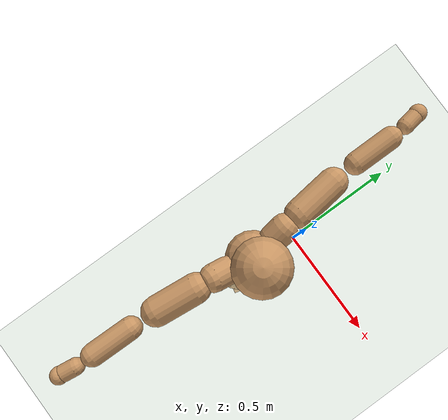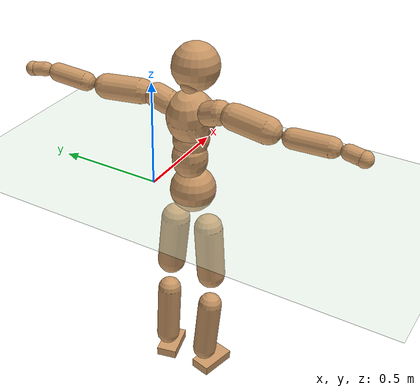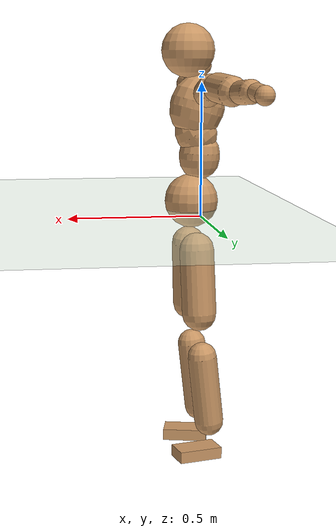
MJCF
<mujoco model="humanoid">
  <compiler coordinate="local" angle="radian"/>
  <default>
    <joint damping="0.0" armature="0.01" stiffness="0.0" limited="true"/>
    <geom conaffinity="1" condim="3" contype="7" margin="0.001" rgba="0.8 0.6 .4 1"/>
  </default>
  <asset>
    <texture type="skybox" builtin="gradient" rgb1=".4 .5 .6" rgb2="0 0 0" width="100" height="100"/>
    <texture builtin="flat" height="1278" mark="cross" markrgb="1 1 1" name="texgeom" random="0.01" rgb1="0.8 0.6 0.4" rgb2="0.8 0.6 0.4" type="cube" width="127"/>
    <texture builtin="checker" height="100" name="texplane" rgb1="0 0 0" rgb2="0.8 0.8 0.8" type="2d" width="100"/>
    <material name="MatPlane" reflectance="0.5" shininess="1" specular="1" texrepeat="60 60" texture="texplane"/>
    <material name="geom" texture="texgeom" texuniform="true"/>
  </asset>
  <worldbody>
    <light cutoff="100" diffuse="1 1 1" dir="-0 0 -1.3" directional="true" exponent="1" pos="0 0 1.3" specular=".1 .1 .1"/>
    <geom conaffinity="1" condim="3" name="floor" pos="0 0 0" rgba="0.8 0.9 0.8 1" size="100 100 .2" type="plane" material="MatPlane"/>
    <body name="Pelvis" pos="0.0001 -0.2117 0.0333">
      <freejoint name="Pelvis"/>
      <geom type="sphere" contype="1" conaffinity="1" density="500" size="0.1058" pos="0.0000 0.0000 0.0000" name="Pelvis"/>
      <body name="L_Hip" pos="-0.0053 0.0798 -0.0988">
        <joint name="L_Hip_x" type="hinge" pos="0 0 0" axis="1 0 0" stiffness="800" damping="80" armature="0.02" range="-180.0000 180.0000"/>
        <joint name="L_Hip_y" type="hinge" pos="0 0 0" axis="0 1 0" stiffness="800" damping="80" armature="0.02" range="-180.0000 180.0000"/>
        <joint name="L_Hip_z" type="hinge" pos="0 0 0" axis="0 0 1" stiffness="800" damping="80" armature="0.02" range="-180.0000 180.0000"/>
        <geom type="capsule" contype="1" conaffinity="1" density="500" fromto="-0.0027 0.0070 -0.0845 -0.0108 0.0282 -0.3378" size="0.0675" name="L_Hip"/>
        <body name="L_Knee" pos="-0.0134 0.0352 -0.4223">
          <joint name="L_Knee_x" type="hinge" pos="0 0 0" axis="1 0 0" stiffness="800" damping="80" armature="0.02" range="-180.0000 180.0000"/>
          <joint name="L_Knee_y" type="hinge" pos="0 0 0" axis="0 1 0" stiffness="800" damping="80" armature="0.02" range="-180.0000 180.0000"/>
          <joint name="L_Knee_z" type="hinge" pos="0 0 0" axis="0 0 1" stiffness="800" damping="80" armature="0.02" range="-180.0000 180.0000"/>
          <geom type="capsule" contype="1" conaffinity="1" density="500" fromto="-0.0102 -0.0023 -0.0901 -0.0409 -0.0092 -0.3605" size="0.0574" name="L_Knee"/>
          <body name="L_Ankle" pos="-0.0511 -0.0115 -0.4506">
            <joint name="L_Ankle_x" type="hinge" pos="0 0 0" axis="1 0 0" stiffness="800" damping="80" armature="0.02" range="-180.0000 180.0000"/>
            <joint name="L_Ankle_y" type="hinge" pos="0 0 0" axis="0 1 0" stiffness="800" damping="80" armature="0.02" range="-180.0000 180.0000"/>
            <joint name="L_Ankle_z" type="hinge" pos="0 0 0" axis="0 0 1" stiffness="800" damping="80" armature="0.02" range="-180.0000 180.0000"/>
            <geom type="box" contype="1" conaffinity="1" density="500" pos="0.0615 0.0143 -0.0317" size="0.0872 0.0499 0.0228" quat="0.9935 0.0000 0.0000 0.1139" name="L_Ankle"/>
            <body name="L_Toe" pos="0.1231 0.0286 -0.0635">
              <joint name="L_Toe_x" type="hinge" pos="0 0 0" axis="1 0 0" stiffness="500" damping="50" armature="0.02" range="-180.0000 180.0000"/>
              <joint name="L_Toe_y" type="hinge" pos="0 0 0" axis="0 1 0" stiffness="500" damping="50" armature="0.02" range="-180.0000 180.0000"/>
              <joint name="L_Toe_z" type="hinge" pos="0 0 0" axis="0 0 1" stiffness="500" damping="50" armature="0.02" range="-180.0000 180.0000"/>
              <geom type="box" contype="1" conaffinity="1" density="500" pos="0.0000 0.0000 0.0314" size="0.001 0.0025 0.0011" quat="0.9928 0.0000 0.0000 0.1197" name="L_Toe"/>
            </body>
          </body>
        </body>
      </body>
      <body name="R_Hip" pos="-0.0011 -0.0771 -0.0989">
        <joint name="R_Hip_x" type="hinge" pos="0 0 0" axis="1 0 0" stiffness="800" damping="80" armature="0.02" range="-180.0000 180.0000"/>
        <joint name="R_Hip_y" type="hinge" pos="0 0 0" axis="0 1 0" stiffness="800" damping="80" armature="0.02" range="-180.0000 180.0000"/>
        <joint name="R_Hip_z" type="hinge" pos="0 0 0" axis="0 0 1" stiffness="800" damping="80" armature="0.02" range="-180.0000 180.0000"/>
        <geom type="capsule" contype="1" conaffinity="1" density="500" fromto="-0.0031 -0.0087 -0.0856 -0.0126 -0.0346 -0.3422" size="0.0666" name="R_Hip"/>
        <body name="R_Knee" pos="-0.0157 -0.0433 -0.4278">
          <joint name="R_Knee_x" type="hinge" pos="0 0 0" axis="1 0 0" stiffness="800" damping="80" armature="0.02" range="-180.0000 180.0000"/>
          <joint name="R_Knee_y" type="hinge" pos="0 0 0" axis="0 1 0" stiffness="800" damping="80" armature="0.02" range="-180.0000 180.0000"/>
          <joint name="R_Knee_z" type="hinge" pos="0 0 0" axis="0 0 1" stiffness="800" damping="80" armature="0.02" range="-180.0000 180.0000"/>
          <geom type="capsule" contype="1" conaffinity="1" density="500" fromto="-0.0098 0.0030 -0.0904 -0.0393 0.0121 -0.3614" size="0.0575" name="R_Knee"/>
          <body name="R_Ankle" pos="-0.0492 0.0151 -0.4518">
            <joint name="R_Ankle_x" type="hinge" pos="0 0 0" axis="1 0 0" stiffness="800" damping="80" armature="0.02" range="-180.0000 180.0000"/>
            <joint name="R_Ankle_y" type="hinge" pos="0 0 0" axis="0 1 0" stiffness="800" damping="80" armature="0.02" range="-180.0000 180.0000"/>
            <joint name="R_Ankle_z" type="hinge" pos="0 0 0" axis="0 0 1" stiffness="800" damping="80" armature="0.02" range="-180.0000 180.0000"/>
            <geom type="box" contype="1" conaffinity="1" density="500" pos="0.0637 -0.0151 -0.0271" size="0.0892 0.0496 0.0227" quat="0.9933 0.0000 0.0000 -0.1159" name="R_Ankle"/>
            <body name="R_Toe" pos="0.1274 -0.0302 -0.0541">
              <joint name="R_Toe_x" type="hinge" pos="0 0 0" axis="1 0 0" stiffness="500" damping="50" armature="0.02" range="-180.0000 180.0000"/>
              <joint name="R_Toe_y" type="hinge" pos="0 0 0" axis="0 1 0" stiffness="500" damping="50" armature="0.02" range="-180.0000 180.0000"/>
              <joint name="R_Toe_z" type="hinge" pos="0 0 0" axis="0 0 1" stiffness="500" damping="50" armature="0.02" range="-180.0000 180.0000"/>
              <geom type="box" contype="1" conaffinity="1" density="500" pos="0.0000 0.0000 0.0295" size="0.0009 0.0024 0.0013" quat="0.9943 0.0000 0.0000 -0.1069" name="R_Toe"/>
            </body>
          </body>
        </body>
      </body>
      <body name="Torso" pos="-0.0297 -0.0028 0.1135">
        <joint name="Torso_x" type="hinge" pos="0 0 0" axis="1 0 0" stiffness="1000" damping="100" armature="0.02" range="-180.0000 180.0000"/>
        <joint name="Torso_y" type="hinge" pos="0 0 0" axis="0 1 0" stiffness="1000" damping="100" armature="0.02" range="-180.0000 180.0000"/>
        <joint name="Torso_z" type="hinge" pos="0 0 0" axis="0 0 1" stiffness="1000" damping="100" armature="0.02" range="-180.0000 180.0000"/>
        <geom type="capsule" contype="1" conaffinity="1" density="500" fromto="-0.0023 0.0021 0.0756 -0.0015 0.0014 0.0504" size="0.0798" name="Torso"/>
        <body name="Spine" pos="-0.0038 0.0035 0.1261">
          <joint name="Spine_x" type="hinge" pos="0 0 0" axis="1 0 0" stiffness="1000" damping="100" armature="0.02" range="-180.0000 180.0000"/>
          <joint name="Spine_y" type="hinge" pos="0 0 0" axis="0 1 0" stiffness="1000" damping="100" armature="0.02" range="-180.0000 180.0000"/>
          <joint name="Spine_z" type="hinge" pos="0 0 0" axis="0 0 1" stiffness="1000" damping="100" armature="0.02" range="-180.0000 180.0000"/>
          <geom type="capsule" contype="1" conaffinity="1" density="500" fromto="0.0204 0.0009 0.0313 0.0136 0.0006 0.0209" size="0.0807" name="Spine"/>
          <body name="Chest" pos="0.0341 0.0014 0.0522">
            <joint name="Chest_x" type="hinge" pos="0 0 0" axis="1 0 0" stiffness="1000" damping="100" armature="0.02" range="-180.0000 180.0000"/>
            <joint name="Chest_y" type="hinge" pos="0 0 0" axis="0 1 0" stiffness="1000" damping="100" armature="0.02" range="-180.0000 180.0000"/>
            <joint name="Chest_z" type="hinge" pos="0 0 0" axis="0 0 1" stiffness="1000" damping="100" armature="0.02" range="-180.0000 180.0000"/>
            <geom type="capsule" contype="1" conaffinity="1" density="500" fromto="-0.0260 -0.0007 0.0941 -0.0173 -0.0005 0.0627" size="0.1068" name="Chest"/>
            <body name="Neck" pos="-0.0444 -0.0022 0.223">
              <joint name="Neck_x" type="hinge" pos="0 0 0" axis="1 0 0" stiffness="500" damping="50" armature="0.02" range="-180.0000 180.0000"/>
              <joint name="Neck_y" type="hinge" pos="0 0 0" axis="0 1 0" stiffness="500" damping="50" armature="0.02" range="-180.0000 180.0000"/>
              <joint name="Neck_z" type="hinge" pos="0 0 0" axis="0 0 1" stiffness="500" damping="50" armature="0.02" range="-180.0000 180.0000"/>
              <geom type="capsule" contype="1" conaffinity="1" density="500" fromto="0.0121 0.0005 0.0141 0.0483 0.0019 0.0564" size="0.0444" name="Neck"/>
              <body name="Head" pos="0.0604 0.0024 0.0705">
                <joint name="Head_x" type="hinge" pos="0 0 0" axis="1 0 0" stiffness="500" damping="50" armature="0.02" range="-180.0000 180.0000"/>
                <joint name="Head_y" type="hinge" pos="0 0 0" axis="0 1 0" stiffness="500" damping="50" armature="0.02" range="-180.0000 180.0000"/>
                <joint name="Head_z" type="hinge" pos="0 0 0" axis="0 0 1" stiffness="500" damping="50" armature="0.02" range="-180.0000 180.0000"/>
                <geom type="sphere" contype="1" conaffinity="1" density="500" size="0.1047" pos="0.0000 0.0000 0.0000" name="Head"/>
              </body>
            </body>
            <body name="L_Thorax" pos="-0.04 0.0824 0.1245">
              <joint name="L_Thorax_x" type="hinge" pos="0 0 0" axis="1 0 0" stiffness="500" damping="50" armature="0.02" range="-180.0000 180.0000"/>
              <joint name="L_Thorax_y" type="hinge" pos="0 0 0" axis="0 1 0" stiffness="500" damping="50" armature="0.02" range="-180.0000 180.0000"/>
              <joint name="L_Thorax_z" type="hinge" pos="0 0 0" axis="0 0 1" stiffness="500" damping="50" armature="0.02" range="-180.0000 180.0000"/>
              <geom type="capsule" contype="1" conaffinity="1" density="500" fromto="-0.0023 0.0171 0.0070 -0.0094 0.0684 0.0280" size="0.0545" name="L_Thorax"/>
              <body name="L_Shoulder" pos="-0.0117 0.0855 0.035">
                <joint name="L_Shoulder_x" type="hinge" pos="0 0 0" axis="1 0 0" stiffness="500" damping="50" armature="0.02" range="-720.0000 720.0000"/>
                <joint name="L_Shoulder_y" type="hinge" pos="0 0 0" axis="0 1 0" stiffness="500" damping="50" armature="0.02" range="-720.0000 720.0000"/>
                <joint name="L_Shoulder_z" type="hinge" pos="0 0 0" axis="0 0 1" stiffness="500" damping="50" armature="0.02" range="-720.0000 720.0000"/>
                <geom type="capsule" contype="1" conaffinity="1" density="500" fromto="-0.0067 0.0552 -0.0031 -0.0269 0.2208 -0.0124" size="0.0555" name="L_Shoulder"/>
                <body name="L_Elbow" pos="-0.0336 0.276 -0.0155">
                  <joint name="L_Elbow_x" type="hinge" pos="0 0 0" axis="1 0 0" stiffness="500" damping="50" armature="0.02" range="-720.0000 720.0000"/>
                  <joint name="L_Elbow_y" type="hinge" pos="0 0 0" axis="0 1 0" stiffness="500" damping="50" armature="0.02" range="-720.0000 720.0000"/>
                  <joint name="L_Elbow_z" type="hinge" pos="0 0 0" axis="0 0 1" stiffness="500" damping="50" armature="0.02" range="-720.0000 720.0000"/>
                  <geom type="capsule" contype="1" conaffinity="1" density="500" fromto="-0.0000 0.0515 0.0026 -0.0000 0.2062 0.0105" size="0.0421" name="L_Elbow"/>
                  <body name="L_Wrist" pos="-0.0001 0.2577 0.0131">
                    <joint name="L_Wrist_x" type="hinge" pos="0 0 0" axis="1 0 0" stiffness="300" damping="30" armature="0.02" range="-180.0000 180.0000"/>
                    <joint name="L_Wrist_y" type="hinge" pos="0 0 0" axis="0 1 0" stiffness="300" damping="30" armature="0.02" range="-180.0000 180.0000"/>
                    <joint name="L_Wrist_z" type="hinge" pos="0 0 0" axis="0 0 1" stiffness="300" damping="30" armature="0.02" range="-180.0000 180.0000"/>
                    <geom type="capsule" contype="1" conaffinity="1" density="500" fromto="-0.0028 0.0166 -0.0020 -0.0111 0.0664 -0.0081" size="0.0315" name="L_Wrist"/>
                    <body name="L_Hand" pos="-0.0139 0.0831 -0.0101">
                      <joint name="L_Hand_x" type="hinge" pos="0 0 0" axis="1 0 0" stiffness="300" damping="30" armature="0.02" range="-180.0000 180.0000"/>
                      <joint name="L_Hand_y" type="hinge" pos="0 0 0" axis="0 1 0" stiffness="300" damping="30" armature="0.02" range="-180.0000 180.0000"/>
                      <joint name="L_Hand_z" type="hinge" pos="0 0 0" axis="0 0 1" stiffness="300" damping="30" armature="0.02" range="-180.0000 180.0000"/>
                      <geom type="sphere" contype="1" conaffinity="1" density="500" size="0.0335" pos="0.0000 0.0000 0.0000" name="L_Hand"/>
                    </body>
                  </body>
                </body>
              </body>
            </body>
            <body name="R_Thorax" pos="-0.0455 -0.0839 0.1229">
              <joint name="R_Thorax_x" type="hinge" pos="0 0 0" axis="1 0 0" stiffness="500" damping="50" armature="0.02" range="-180.0000 180.0000"/>
              <joint name="R_Thorax_y" type="hinge" pos="0 0 0" axis="0 1 0" stiffness="500" damping="50" armature="0.02" range="-180.0000 180.0000"/>
              <joint name="R_Thorax_z" type="hinge" pos="0 0 0" axis="0 0 1" stiffness="500" damping="50" armature="0.02" range="-180.0000 180.0000"/>
              <geom type="capsule" contype="1" conaffinity="1" density="500" fromto="-0.0023 -0.0178 0.0072 -0.0090 -0.0710 0.0290" size="0.0535" name="R_Thorax"/>
              <body name="R_Shoulder" pos="-0.0113 -0.0888 0.0362">
                <joint name="R_Shoulder_x" type="hinge" pos="0 0 0" axis="1 0 0" stiffness="500" damping="50" armature="0.02" range="-720.0000 720.0000"/>
                <joint name="R_Shoulder_y" type="hinge" pos="0 0 0" axis="0 1 0" stiffness="500" damping="50" armature="0.02" range="-720.0000 720.0000"/>
                <joint name="R_Shoulder_z" type="hinge" pos="0 0 0" axis="0 0 1" stiffness="500" damping="50" armature="0.02" range="-720.0000 720.0000"/>
                <geom type="capsule" contype="1" conaffinity="1" density="500" fromto="-0.0056 -0.0535 -0.0034 -0.0224 -0.2141 -0.0135" size="0.0572" name="R_Shoulder"/>
                <body name="R_Elbow" pos="-0.028 -0.2676 -0.0168">
                  <joint name="R_Elbow_x" type="hinge" pos="0 0 0" axis="1 0 0" stiffness="500" damping="50" armature="0.02" range="-720.0000 720.0000"/>
                  <joint name="R_Elbow_y" type="hinge" pos="0 0 0" axis="0 1 0" stiffness="500" damping="50" armature="0.02" range="-720.0000 720.0000"/>
                  <joint name="R_Elbow_z" type="hinge" pos="0 0 0" axis="0 0 1" stiffness="500" damping="50" armature="0.02" range="-720.0000 720.0000"/>
                  <geom type="capsule" contype="1" conaffinity="1" density="500" fromto="-0.0005 -0.0534 0.0027 -0.0021 -0.2138 0.0108" size="0.0429" name="R_Elbow"/>
                  <body name="R_Wrist" pos="-0.0027 -0.2672 0.0135">
                    <joint name="R_Wrist_x" type="hinge" pos="0 0 0" axis="1 0 0" stiffness="300" damping="30" armature="0.02" range="-180.0000 180.0000"/>
                    <joint name="R_Wrist_y" type="hinge" pos="0 0 0" axis="0 1 0" stiffness="300" damping="30" armature="0.02" range="-180.0000 180.0000"/>
                    <joint name="R_Wrist_z" type="hinge" pos="0 0 0" axis="0 0 1" stiffness="300" damping="30" armature="0.02" range="-180.0000 180.0000"/>
                    <geom type="capsule" contype="1" conaffinity="1" density="500" fromto="-0.0022 -0.0168 -0.0015 -0.0088 -0.0670 -0.0060" size="0.0324" name="R_Wrist"/>
                    <body name="R_Hand" pos="-0.011 -0.0838 -0.0076">
                      <joint name="R_Hand_x" type="hinge" pos="0 0 0" axis="1 0 0" stiffness="300" damping="30" armature="0.02" range="-180.0000 180.0000"/>
                      <joint name="R_Hand_y" type="hinge" pos="0 0 0" axis="0 1 0" stiffness="300" damping="30" armature="0.02" range="-180.0000 180.0000"/>
                      <joint name="R_Hand_z" type="hinge" pos="0 0 0" axis="0 0 1" stiffness="300" damping="30" armature="0.02" range="-180.0000 180.0000"/>
                      <geom type="sphere" contype="1" conaffinity="1" density="500" size="0.0338" pos="0.0000 0.0000 0.0000" name="R_Hand"/>
                    </body>
                  </body>
                </body>
              </body>
            </body>
          </body>
        </body>
      </body>
    </body>
  </worldbody>
  <actuator>
    <motor name="L_Hip_x" joint="L_Hip_x" gear="500"/>
    <motor name="L_Hip_y" joint="L_Hip_y" gear="500"/>
    <motor name="L_Hip_z" joint="L_Hip_z" gear="500"/>
    <motor name="L_Knee_x" joint="L_Knee_x" gear="500"/>
    <motor name="L_Knee_y" joint="L_Knee_y" gear="500"/>
    <motor name="L_Knee_z" joint="L_Knee_z" gear="500"/>
    <motor name="L_Ankle_x" joint="L_Ankle_x" gear="500"/>
    <motor name="L_Ankle_y" joint="L_Ankle_y" gear="500"/>
    <motor name="L_Ankle_z" joint="L_Ankle_z" gear="500"/>
    <motor name="L_Toe_x" joint="L_Toe_x" gear="500"/>
    <motor name="L_Toe_y" joint="L_Toe_y" gear="500"/>
    <motor name="L_Toe_z" joint="L_Toe_z" gear="500"/>
    <motor name="R_Hip_x" joint="R_Hip_x" gear="500"/>
    <motor name="R_Hip_y" joint="R_Hip_y" gear="500"/>
    <motor name="R_Hip_z" joint="R_Hip_z" gear="500"/>
    <motor name="R_Knee_x" joint="R_Knee_x" gear="500"/>
    <motor name="R_Knee_y" joint="R_Knee_y" gear="500"/>
    <motor name="R_Knee_z" joint="R_Knee_z" gear="500"/>
    <motor name="R_Ankle_x" joint="R_Ankle_x" gear="500"/>
    <motor name="R_Ankle_y" joint="R_Ankle_y" gear="500"/>
    <motor name="R_Ankle_z" joint="R_Ankle_z" gear="500"/>
    <motor name="R_Toe_x" joint="R_Toe_x" gear="500"/>
    <motor name="R_Toe_y" joint="R_Toe_y" gear="500"/>
    <motor name="R_Toe_z" joint="R_Toe_z" gear="500"/>
    <motor name="Torso_x" joint="Torso_x" gear="500"/>
    <motor name="Torso_y" joint="Torso_y" gear="500"/>
    <motor name="Torso_z" joint="Torso_z" gear="500"/>
    <motor name="Spine_x" joint="Spine_x" gear="500"/>
    <motor name="Spine_y" joint="Spine_y" gear="500"/>
    <motor name="Spine_z" joint="Spine_z" gear="500"/>
    <motor name="Chest_x" joint="Chest_x" gear="500"/>
    <motor name="Chest_y" joint="Chest_y" gear="500"/>
    <motor name="Chest_z" joint="Chest_z" gear="500"/>
    <motor name="Neck_x" joint="Neck_x" gear="500"/>
    <motor name="Neck_y" joint="Neck_y" gear="500"/>
    <motor name="Neck_z" joint="Neck_z" gear="500"/>
    <motor name="Head_x" joint="Head_x" gear="500"/>
    <motor name="Head_y" joint="Head_y" gear="500"/>
    <motor name="Head_z" joint="Head_z" gear="500"/>
    <motor name="L_Thorax_x" joint="L_Thorax_x" gear="500"/>
    <motor name="L_Thorax_y" joint="L_Thorax_y" gear="500"/>
    <motor name="L_Thorax_z" joint="L_Thorax_z" gear="500"/>
    <motor name="L_Shoulder_x" joint="L_Shoulder_x" gear="500"/>
    <motor name="L_Shoulder_y" joint="L_Shoulder_y" gear="500"/>
    <motor name="L_Shoulder_z" joint="L_Shoulder_z" gear="500"/>
    <motor name="L_Elbow_x" joint="L_Elbow_x" gear="500"/>
    <motor name="L_Elbow_y" joint="L_Elbow_y" gear="500"/>
    <motor name="L_Elbow_z" joint="L_Elbow_z" gear="500"/>
    <motor name="L_Wrist_x" joint="L_Wrist_x" gear="500"/>
    <motor name="L_Wrist_y" joint="L_Wrist_y" gear="500"/>
    <motor name="L_Wrist_z" joint="L_Wrist_z" gear="500"/>
    <motor name="L_Hand_x" joint="L_Hand_x" gear="500"/>
    <motor name="L_Hand_y" joint="L_Hand_y" gear="500"/>
    <motor name="L_Hand_z" joint="L_Hand_z" gear="500"/>
    <motor name="R_Thorax_x" joint="R_Thorax_x" gear="500"/>
    <motor name="R_Thorax_y" joint="R_Thorax_y" gear="500"/>
    <motor name="R_Thorax_z" joint="R_Thorax_z" gear="500"/>
    <motor name="R_Shoulder_x" joint="R_Shoulder_x" gear="500"/>
    <motor name="R_Shoulder_y" joint="R_Shoulder_y" gear="500"/>
    <motor name="R_Shoulder_z" joint="R_Shoulder_z" gear="500"/>
    <motor name="R_Elbow_x" joint="R_Elbow_x" gear="500"/>
    <motor name="R_Elbow_y" joint="R_Elbow_y" gear="500"/>
    <motor name="R_Elbow_z" joint="R_Elbow_z" gear="500"/>
    <motor name="R_Wrist_x" joint="R_Wrist_x" gear="500"/>
    <motor name="R_Wrist_y" joint="R_Wrist_y" gear="500"/>
    <motor name="R_Wrist_z" joint="R_Wrist_z" gear="500"/>
    <motor name="R_Hand_x" joint="R_Hand_x" gear="500"/>
    <motor name="R_Hand_y" joint="R_Hand_y" gear="500"/>
    <motor name="R_Hand_z" joint="R_Hand_z" gear="500"/>
  </actuator>
  <contact>
    <exclude body1="Torso" body2="Chest"/>
    <exclude body1="Head" body2="Chest"/>
    <exclude body1="R_Knee" body2="R_Toe"/>
    <exclude body1="R_Knee" body2="L_Ankle"/>
    <exclude body1="R_Knee" body2="L_Toe"/>
    <exclude body1="L_Knee" body2="L_Toe"/>
    <exclude body1="L_Knee" body2="R_Ankle"/>
    <exclude body1="L_Knee" body2="R_Toe"/>
    <exclude body1="L_Shoulder" body2="Chest"/>
    <exclude body1="R_Shoulder" body2="Chest"/>
  </contact>
  <sensor/>
  <size njmax="700" nconmax="700"/>
</mujoco>
